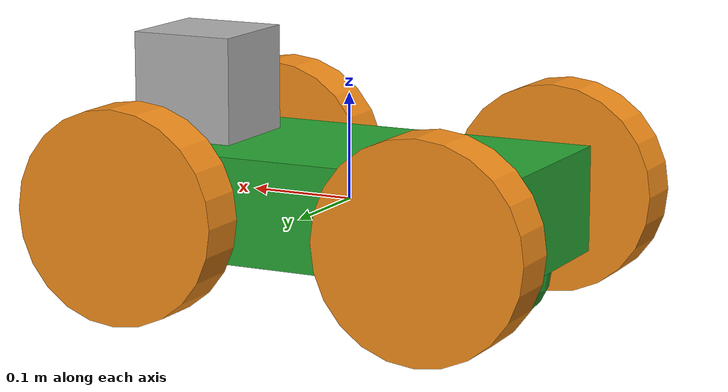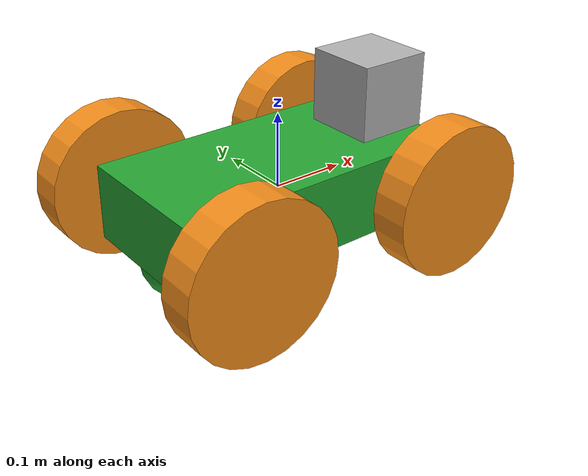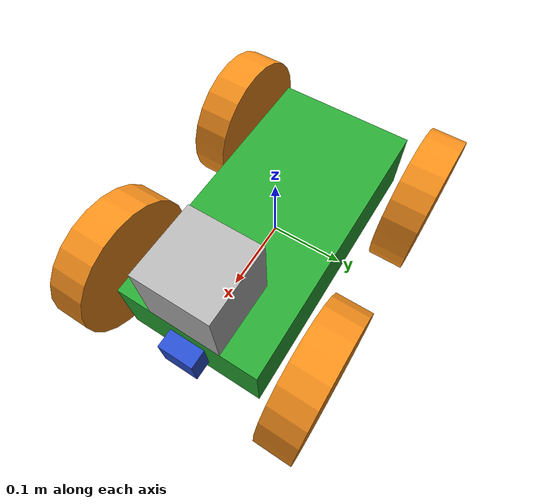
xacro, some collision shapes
<?xml version='1.0'?>

<robot name="my_robot" xmlns:xacro="http://www.ros.org/wiki/xacro">
    <xacro:include filename="$(find my_robot)/urdf/my_robot.gazebo" />
    <link name="robot_footprint"></link>

    <joint name="robot_footprint_joint" type="fixed">
        <origin xyz="0 0 0" rpy="0 0 0" />
        <parent link="robot_footprint"/>
        <child link="chassis" />
    </joint>

    <link name='chassis'>
        <pose>0 0 0.1 0 0 0</pose>

        <inertial>
            <mass value="15.0"/>
            <origin xyz="0.0 0 0" rpy=" 0 0 0"/>
            <inertia
                ixx="0.1" ixy="0" ixz="0"
                iyy="0.1" iyz="0"
                izz="0.1"
            />
        </inertial>

        <collision name='collision'>
        <origin xyz="0 0 0" rpy=" 0 0 0"/>
        <geometry>
            <box size=".4 .2 .1"/>
        </geometry>
        <material name="blue">
            <color rgba="0.0 0.0 0.8 1.0"/>
        </material>
        </collision>

        <visual name='chassis_visual'>
        <origin xyz="0 0 0" rpy=" 0 0 0"/>
        <geometry>
            <box size=".4 .2 .1"/>
        </geometry>
        </visual>

        <collision name='back_caster_collision'>
        <origin xyz="-0.15 0 -0.05" rpy=" 0 0 0"/>
        <geometry>
            <sphere radius="0.0499"/>
        </geometry>
        </collision>

        <visual name='back_caster_visual'>
        <origin xyz="-0.15 0 -0.05" rpy=" 0 0 0"/>
        <geometry>
            <sphere radius="0.05"/>
        </geometry>
        </visual>

        <collision name='front_caster_collision'>
            <origin xyz="0.15 0 -0.05" rpy=" 0 0 0"/>
            <geometry>
                <sphere radius="0.02"/>
            </geometry>
        </collision>

        <visual name='front_caster_visual'>
            <origin xyz="0.15 0 -0.05" rpy=" 0 0 0"/>
            <geometry>
                <sphere radius="0.02"/>
            </geometry>
        </visual>

    </link>

    <link name="left_wheel">

        <inertial>
            <mass value="5"/>
            <origin xyz=" 0 0 0" rpy="0 1.5707 1.5707"/>
            <inertia
            ixx="0.1" ixy="0" ixz="0"
            iyy="0.1" iyz="0"
            izz="0.1"
            />
        </inertial>

        <collision name="left_wheel_collision">
            <origin xyz=" 0 0 0" rpy="0 1.5707 1.5707"/>
            <geometry>
                <cylinder radius="0.1" length="0.05"/>
            </geometry>
        </collision>

        <visual name="left_wheel_visual">
            <origin xyz=" 0 0 0" rpy="0 1.5707 1.5707"/>
            <geometry>
                <cylinder radius="0.1" length="0.05"/>
            </geometry>
        </visual>
    </link>

    <link name="rear_left_wheel">
        <pose>0 0 0 0 1.5707 1.5707</pose>

        <inertial>
            <mass value="0.001"/>
            <origin xyz=" 0 0 0" rpy="0 1.5707 1.5707"/>
            <inertia
            ixx="0" ixy="0" ixz="0"
            iyy="0" iyz="0"
            izz="0"
            />
        </inertial>

        <collision name="rear_left_wheel_collision">
            <origin xyz=" 0 0 0" rpy="0 1.5707 1.5707"/>
            <geometry>
                <cylinder radius="0.1" length="0.05"/>
            </geometry>
        </collision>

        <visual name="rear_left_wheel_visual">
            <origin xyz=" 0 0 0" rpy="0 1.5707 1.5707"/>
            <geometry>
                <cylinder radius="0.1" length="0.05"/>
            </geometry>
        </visual>
    </link>

    <link name="right_wheel">

        <inertial>
            <mass value="5"/>
            <origin xyz="0 0 0" rpy="0 1.5707 1.5707"/>
            <inertia
            ixx="0.1" ixy="0" ixz="0"
            iyy="0.1" iyz="0"
            izz="0.1"
            />
        </inertial>

        <collision name="right_wheel_collision">
            <origin xyz="0 0 0" rpy="0 1.5707 1.5707"/>
            <geometry>
                <cylinder radius="0.1" length="0.05"/>
            </geometry>
        </collision>

        <visual name="right_wheel_visual">
            <origin xyz="0 0 0" rpy="0 1.5707 1.5707"/>
            <geometry>
                <cylinder radius="0.1" length="0.05"/>
            </geometry>
        </visual>
    </link>

    <link name="rear_right_wheel">

        <inertial>
            <mass value="0.001"/>
            <origin xyz="0 0 0" rpy="0 1.5707 1.5707"/>
            <inertia
            ixx="0" ixy="0" ixz="0"
            iyy="0" iyz="0"
            izz="0"
            />
        </inertial>

        <collision name="rear_right_wheel_collision">
            <origin xyz="0 0 0" rpy="0 1.5707 1.5707"/>
            <geometry>
                <cylinder radius="0.1" length="0.05"/>
            </geometry>
        </collision>

        <visual name="rear_right_wheel_visual">
            <origin xyz="0 0 0" rpy="0 1.5707 1.5707"/>
            <geometry>
                <cylinder radius="0.1" length="0.05"/>
            </geometry>
        </visual>
    </link>

    <link name="camera">
        <inertial>
            <mass value="0.1"/>
            <origin xyz="0 0 0" rpy="0 0 0"/>
            <box_inertia m="0.1" x="0.05" y="0.05" z="0.05"/>
            <inertia
                ixx="1e-6" ixy="0" ixz="0"
                iyy="1e-6" iyz="0"
                izz="1e-6"
            />
        </inertial>

        <collision name="camera_collision">
            <origin xyz="0 0 0" rpy="0 0 0"/>
            <geometry>
                <box size="0.05 0.05 0.05"/>
            </geometry>
        </collision>

        <visual name="camera_visual">
            <origin xyz="0 0 0" rpy="0 0 0"/>
            <geometry>
                <box size="0.05 0.05 0.05"/>
            </geometry>
        </visual>
    </link>

    <link name="hokuyo">
        <inertial>
            <origin xyz="0 0 0" rpy="0 0 0"/>
            <mass value="1e-5"/>
            <inertia
            ixx="1e-6" ixy="0" ixz="0"
            iyy="1e-6" iyz="0"
            izz="1e-6"
            />
        </inertial>

        <collision>
            <origin xyz="0 0 0" rpy="0 0 0"/>
            <geometry>
                <box size="0.1 0.1 0.1"/>
            </geometry>
        </collision>

        <visual>
            <origin xyz="0 0 0" rpy="0 0 0"/>
            <geometry>
                <mesh filename="package://my_robot/meshes/hokuyo.dae"/>
            </geometry>
        </visual>
    </link>

    <joint name="camera_optical_joint" type="fixed">
        <origin xyz="0 0 0" rpy="-1.5707 0 -1.5707"/>
        <parent link="camera"/>
        <child link="camera_link_optical"/>
    </joint>

    <link name="camera_link_optical">
    </link>

    <joint name="camera_joint" type="fixed">
        <origin xyz="0.2 0 0" rpy="0 0 0"/>
        <child link="camera"/>
        <parent link="chassis"/>
        <axis xyz="0 0 0" rpy="0 0 0"/>
    </joint>

    <joint type="continuous" name="left_wheel_hinge">
        <origin xyz="0.15 0.15 0" rpy="0 0 0"/>
        <child link="left_wheel"/>
        <parent link="chassis"/>
        <axis xyz="0 1 0" rpy="0 0 0"/>
        <limit effort="10000" velocity="1000"/>
        <dynamics damping="1.0" friction="1.0"/>
    </joint>

    <joint type="continuous" name="rear_left_wheel_hinge">
        <origin xyz="-0.15 0.15 0" rpy="0 0 0"/>
        <child link="rear_left_wheel"/>
        <parent link="chassis"/>
        <axis xyz="0 1 0" rpy="0 0 0"/>
        <limit effort="10000" velocity="1000"/>
        <dynamics damping="1.0" friction="1.0"/>
    </joint>

    <joint type="continuous" name="right_wheel_hinge">
        <origin xyz="0.15 -0.15 0" rpy="0 0 0"/>
        <child link="right_wheel"/>
        <parent link="chassis"/>
        <axis xyz="0 1 0" rpy="0 0 0"/>
        <limit effort="10000" velocity="1000"/>
        <dynamics damping="1.0" friction="1.0"/>
    </joint>

    <joint type="continuous" name="rear_right_wheel_hinge">
        <origin xyz="-0.15 -0.15 0" rpy="0 0 0"/>
        <child link="rear_right_wheel"/>
        <parent link="chassis"/>
        <axis xyz="0 1 0" rpy="0 0 0"/>
        <limit effort="10000" velocity="1000"/>
        <dynamics damping="1.0" friction="1.0"/>
    </joint>

    <joint name="hokuyo_joint" type="fixed">
        <origin xyz="0.15 0 0.1" rpy="0 0 0"/>
        <child link="hokuyo"/>
        <parent link="chassis"/>
        <axis xyz="0 1 0"/>
    </joint>

</robot>
